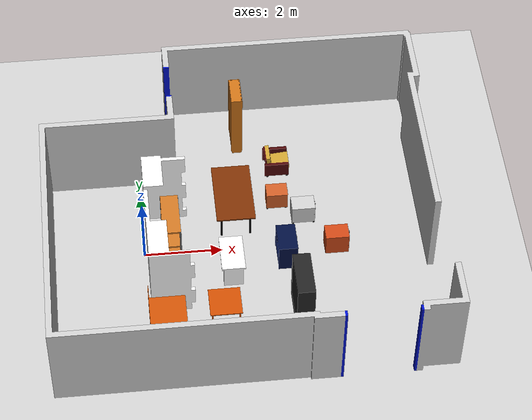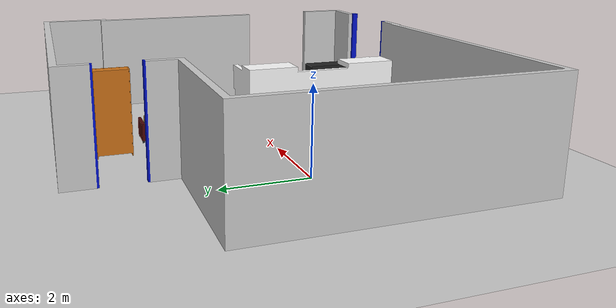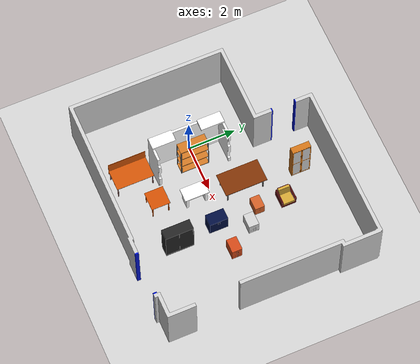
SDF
<sdf version="1.6">
 <world name="default">
  <light name="sun" type="directional">
   <pose>0 0 10 0 -0 0</pose>
   <diffuse>0.8 0.8 0.8 1</diffuse>
   <specular>0.2 0.2 0.2 1</specular>
   <attenuation>
    <range>1000</range>
    <constant>0.9</constant>
    <linear>0.01</linear>
    <quadratic>0.001</quadratic>
   </attenuation>
   <direction>-0.5 0.1 -0.9</direction>
  </light>
  <model name="ground_plane">
   <static>1</static>
   <link name="link">
    <collision name="collision">
     <geometry><plane><normal>0 0 1</normal><size>100 100</size></plane></geometry>
     <surface><friction><ode><mu>100</mu><mu2>50</mu2></ode></friction></surface>
    </collision>
    <visual name="visual">
     <cast_shadows>0</cast_shadows>
     <geometry><plane><normal>0 0 1</normal><size>100 100</size></plane></geometry>
     <material>
      <script><uri>file://media/materials/scripts/gazebo.material</uri><name>Gazebo/Grey</name></script>
     </material>
    </visual>
   </link>
  </model>
  <gravity>0 0 -9.8</gravity>
  <magnetic_field>6e-06 2.3e-05 -4.2e-05</magnetic_field>
  <atmosphere type="adiabatic"/>
  <physics name="default_physics" default="0" type="ode">
   <max_step_size>0.001</max_step_size>
   <real_time_factor>1</real_time_factor>
   <real_time_update_rate>1000</real_time_update_rate>
  </physics>
  <scene><ambient>0.4 0.4 0.4 1</ambient><background>0.7 0.7 0.7 1</background><shadows>1</shadows></scene>
  <audio><device>default</device></audio>
  <spherical_coordinates>
   <surface_model>EARTH_WGS84</surface_model>
   <latitude_deg>0</latitude_deg>
   <longitude_deg>0</longitude_deg>
   <elevation>0</elevation>
   <heading_deg>0</heading_deg>
  </spherical_coordinates>
  <model name="warehouse_shelves">
   <static>1</static>
   <link name="warehouse_shelves">
    <collision name="warehouse_shelves">
     <geometry><mesh><uri>model://warehouse_shelves/meshes/model.dae</uri></mesh></geometry>
    </collision>
    <visual name="warehouse_shelves">
     <geometry><mesh><uri>model://warehouse_shelves/meshes/model.dae</uri></mesh></geometry>
    </visual>
   </link>
   <pose>0.698169 -0.134928 0 0 -0 0</pose>
  </model>
  <model name="velma_alcove">
   <static>1</static>
   <link name="velma_alcove">
    <collision name="velma_alcove">
     <geometry><mesh><uri>model://velma_alcove/meshes/model.dae</uri></mesh></geometry>
    </collision>
    <visual name="velma_alcove">
     <geometry><mesh><uri>model://velma_alcove/meshes/model.dae</uri></mesh></geometry>
    </visual>
   </link>
   <pose>0.569814 -1.73722 0 0 -0 0</pose>
  </model>
  <model name="table_4">
   <static>1</static>
   <link name="table_4">
    <collision name="table_4">
     <geometry><mesh><uri>model://table_4/meshes/model.dae</uri></mesh></geometry>
    </collision>
    <visual name="table_4"><geometry><mesh><uri>model://table_4/meshes/model.dae</uri></mesh></geometry></visual>
   </link>
   <pose>2.18439 -0.707411 0 0 -0 0</pose>
  </model>
  <model name="table_3">
   <static>1</static>
   <link name="table_3">
    <collision name="table_3">
     <geometry><mesh><uri>model://table_3/meshes/model.dae</uri></mesh></geometry>
    </collision>
    <visual name="table_3"><geometry><mesh><uri>model://table_3/meshes/model.dae</uri></mesh></geometry></visual>
   </link>
   <pose>1.87653 -2.1876 0 0 -0 0</pose>
  </model>
  <model name="table_2">
   <static>1</static>
   <link name="table_2">
    <collision name="table_2">
     <geometry><mesh><uri>model://table_2/meshes/model.dae</uri></mesh></geometry>
    </collision>
    <visual name="table_2"><geometry><mesh><uri>model://table_2/meshes/model.dae</uri></mesh></geometry></visual>
   </link>
   <pose>0.458218 -2.71086 0 0 -0 0</pose>
  </model>
  <model name="table_1">
   <static>1</static>
   <link name="table_1">
    <collision name="table_1">
     <geometry><mesh><uri>model://table_1/meshes/model.dae</uri></mesh></geometry>
    </collision>
    <visual name="table_1"><geometry><mesh><uri>model://table_1/meshes/model.dae</uri></mesh></geometry></visual>
   </link>
   <pose>2.39631 1.26042 0 0 -0 0</pose>
  </model>
  <model name="short_cabinet">
   <static>1</static>
   <link name="short_cabinet">
    <collision name="short_cabinet">
     <geometry><mesh><uri>model://short_cabinet/meshes/model.dae</uri></mesh></geometry>
    </collision>
    <visual name="short_cabinet">
     <geometry><mesh><uri>model://short_cabinet/meshes/model.dae</uri></mesh></geometry>
    </visual>
   </link>
   <pose>3.60762 -0.369512 0 0 -0 0</pose>
  </model>
  <model name="p109">
   <static>1</static>
   <link name="p109">
    <collision name="p109"><geometry><mesh><uri>model://p109/meshes/model.dae</uri></mesh></geometry></collision>
    <visual name="p109"><geometry><mesh><uri>model://p109/meshes/model.dae</uri></mesh></geometry></visual>
   </link>
   <pose>-2.29622 -3.99285 0 0 -0 0</pose>
  </model>
  <model name="bookshelf">
   <static>1</static>
   <link name="bookshelf">
    <collision name="bookshelf">
     <geometry><mesh><uri>model://bookshelf/meshes/model.dae</uri></mesh></geometry>
    </collision>
    <visual name="bookshelf">
     <geometry><mesh><uri>model://bookshelf/meshes/model.dae</uri></mesh></geometry>
    </visual>
   </link>
   <pose>2.68489 3.6772 0 0 -0 0</pose>
  </model>
  <model name="high_cabinet">
   <static>1</static>
   <link name="high_cabinet">
    <collision name="high_cabinet">
     <geometry><mesh><uri>model://high_cabinet/meshes/model.dae</uri></mesh></geometry>
    </collision>
    <visual name="high_cabinet">
     <geometry><mesh><uri>model://high_cabinet/meshes/model.dae</uri></mesh></geometry>
    </visual>
   </link>
   <pose>3.82078 -2.12728 0 0 -0 0</pose>
  </model>
  <model name="driving_cabinet_2d">
   <static>1</static>
   <link name="driving_cabinet_2d">
    <collision name="driving_cabinet_2d">
     <geometry><mesh><uri>model://driving_cabinet_2d/meshes/model.dae</uri></mesh></geometry>
    </collision>
    <visual name="driving_cabinet_2d">
     <geometry><mesh><uri>model://driving_cabinet_2d/meshes/model.dae</uri></mesh></geometry>
    </visual>
   </link>
   <pose>3.55094 1.4242 0 0 -0 0</pose>
  </model>
  <model name="driving_cabinet_3d">
   <static>1</static>
   <link name="driving_cabinet_3d">
    <collision name="driving_cabinet_3d">
     <geometry><mesh><uri>model://driving_cabinet_3d/meshes/model.dae</uri></mesh></geometry>
    </collision>
    <visual name="driving_cabinet_3d">
     <geometry><mesh><uri>model://driving_cabinet_3d/meshes/model.dae</uri></mesh></geometry>
    </visual>
   </link>
   <pose>4.16656 0.881334 0 0 -0 0</pose>
  </model>
  <model name="driving_cabinet_4d">
   <static>1</static>
   <link name="driving_cabinet_4d">
    <collision name="driving_cabinet_4d">
     <geometry><mesh><uri>model://driving_cabinet_4d/meshes/model.dae</uri></mesh></geometry>
    </collision>
    <visual name="driving_cabinet_4d">
     <geometry><mesh><uri>model://driving_cabinet_4d/meshes/model.dae</uri></mesh></geometry>
    </visual>
   </link>
   <pose>4.6323 -0.179353 0 0 -0 0</pose>
  </model>
  <model name="armchair">
   <static>1</static>
   <link name="armchair">
    <collision name="armchair">
     <geometry><mesh><uri>model://armchair/meshes/model.dae</uri></mesh></geometry>
    </collision>
    <visual name="armchair">
     <geometry><mesh><uri>model://armchair/meshes/model.dae</uri></mesh></geometry>
    </visual>
   </link>
   <pose>3.96237 2.63638 0 0 -0 0</pose>
  </model>
 </world>
</sdf>
